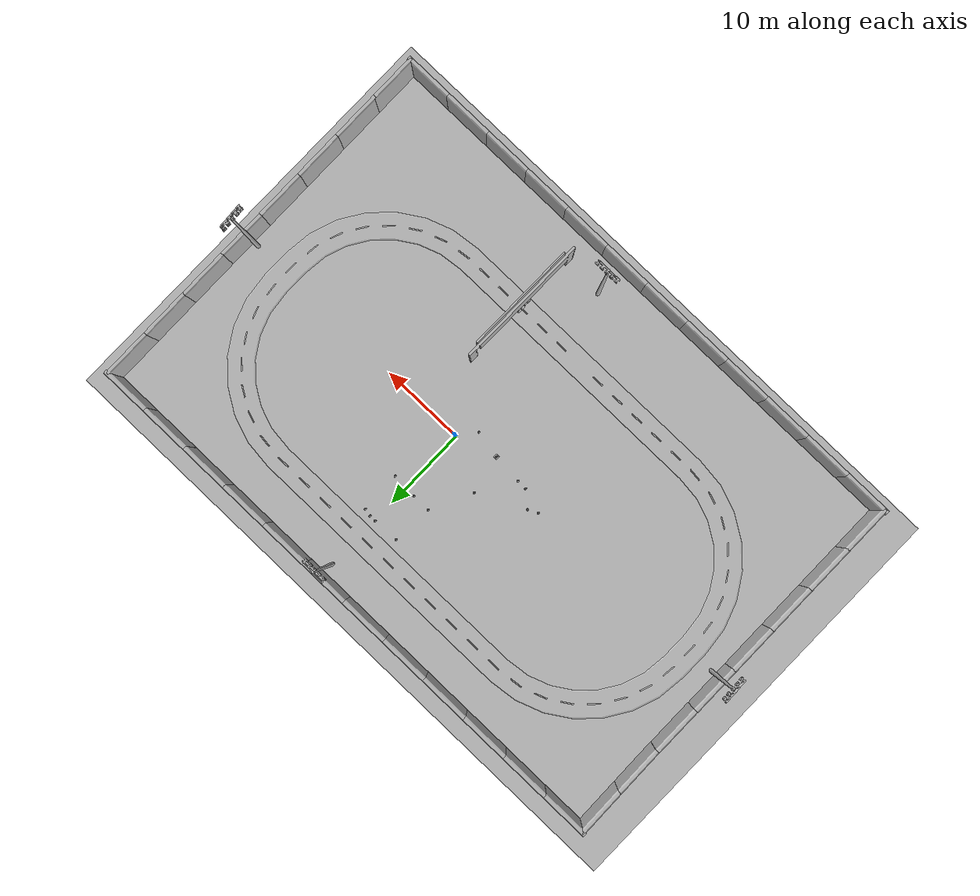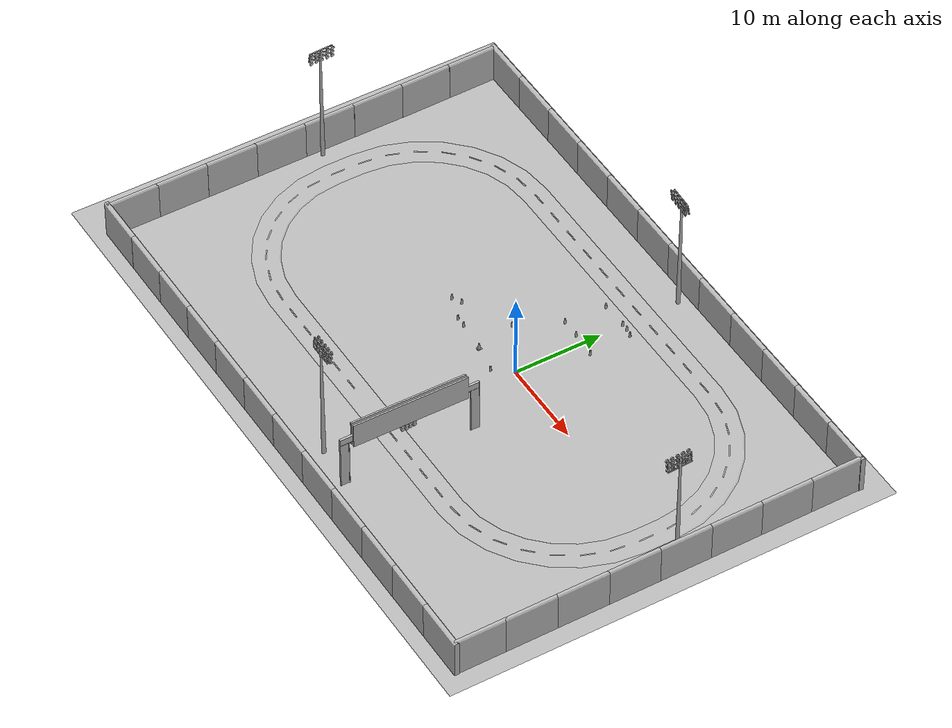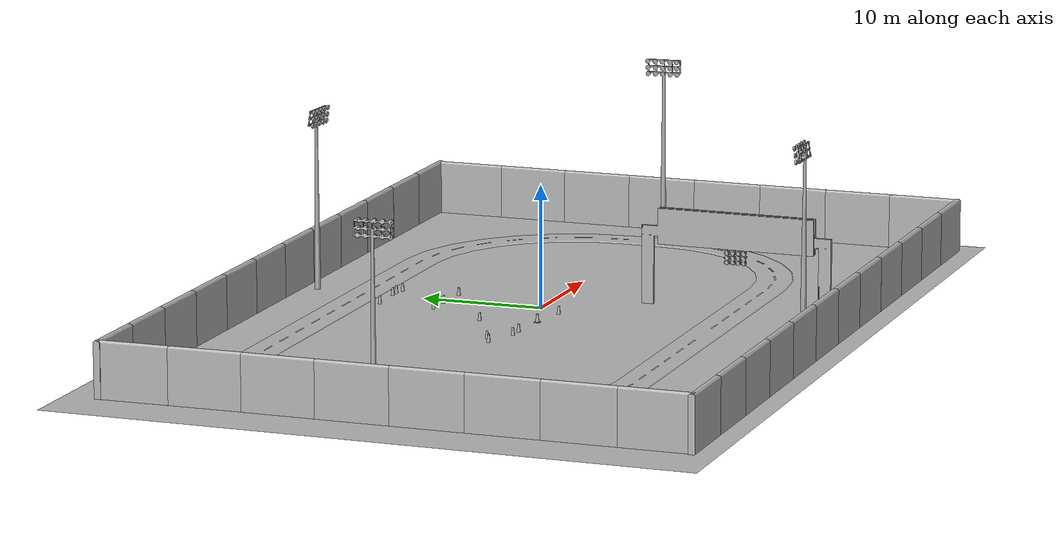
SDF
<sdf version="1.6">
 <world name="default">
  <gravity>0 0 -9.8</gravity>
  <magnetic_field>6e-06 2.3e-05 -4.2e-05</magnetic_field>
  <atmosphere type="adiabatic"/>
  <physics name="default_physics" default="0" type="ode">
   <max_step_size>0.001</max_step_size>
   <real_time_factor>1</real_time_factor>
   <real_time_update_rate>1000</real_time_update_rate>
  </physics>
  <scene><ambient>0.4 0.4 0.4 1</ambient><background>0.7 0.7 0.7 1</background><shadows>1</shadows></scene>
  <spherical_coordinates>
   <surface_model>EARTH_WGS84</surface_model>
   <latitude_deg>0</latitude_deg>
   <longitude_deg>0</longitude_deg>
   <elevation>0</elevation>
   <heading_deg>0</heading_deg>
  </spherical_coordinates>
  <model name="aws_robomaker_racetrack_Billboard_01">
   <include><uri>model://aws_robomaker_racetrack_Billboard_01</uri></include>
   <pose>4.32789 -14.8431 -2e-06 0 1e-06 1.56416</pose>
  </model>
  <model name="aws_robomaker_racetrack_RaceStartLight_01_00">
   <include><uri>model://aws_robomaker_racetrack_RaceStartLight_01</uri></include>
   <pose>4.13359 -14.1692 5.08709 0 -0 0</pose>
  </model>
  <model name="aws_robomaker_racetrack_RaceStartLight_01_01">
   <include><uri>model://aws_robomaker_racetrack_RaceStartLight_01</uri></include>
   <pose>4.14665 -14.6522 5.08709 0 -0 0</pose>
  </model>
  <model name="aws_robomaker_racetrack_RaceStartLight_01_02">
   <include><uri>model://aws_robomaker_racetrack_RaceStartLight_01</uri></include>
   <pose>4.21676 -15.0918 5.08709 0 -0 0</pose>
  </model>
  <model name="aws_robomaker_racetrack_RaceStartLight_01_03">
   <include><uri>model://aws_robomaker_racetrack_RaceStartLight_01</uri></include>
   <pose>4.17594 -15.5526 5.08709 0 -0 0</pose>
  </model>
  <model name="aws_robomaker_racetrack_Track_05_00">
   <include><uri>model://aws_robomaker_racetrack_Track_05</uri></include>
   <pose>0 0 0.051 0 -0 0</pose>
  </model>
  <model name="aws_robomaker_racetrack_Trackline_01_00">
   <include><uri>model://aws_robomaker_racetrack_Trackline_01</uri></include>
   <pose>-4.24539 0 0.102 0 -0 0</pose>
  </model>
  <model name="aws_robomaker_racetrack_TrafficCone_01_00">
   <include><uri>model://aws_robomaker_racetrack_TrafficCone_01</uri></include>
   <pose>-9.379170 -1.123267 0 0 -0 0</pose>
  </model>
  <model name="aws_robomaker_racetrack_TrafficCone_01_01">
   <include><uri>model://aws_robomaker_racetrack_TrafficCone_01</uri></include>
   <pose>-12.1926 -0.169504 0 0 -0 0</pose>
  </model>
  <model name="aws_robomaker_racetrack_TrafficCone_01_02">
   <include><uri>model://aws_robomaker_racetrack_TrafficCone_01</uri></include>
   <pose>-11.1147 0.36652 0 0 -0 0</pose>
  </model>
  <model name="aws_robomaker_racetrack_TrafficCone_01_03">
   <include><uri>model://aws_robomaker_racetrack_TrafficCone_01</uri></include>
   <pose>-8.204195 -1.168056 0 0 -0 0</pose>
  </model>
  <model name="aws_robomaker_racetrack_TrafficCone_01_04">
   <include><uri>model://aws_robomaker_racetrack_TrafficCone_01</uri></include>
   <pose>-5.69629 3.05056 0 0 -0 0</pose>
  </model>
  <model name="aws_robomaker_racetrack_TrafficCone_01_05">
   <include><uri>model://aws_robomaker_racetrack_TrafficCone_01</uri></include>
   <pose>1.63274 12.4879 0 0 -0 0</pose>
  </model>
  <model name="aws_robomaker_racetrack_TrafficCone_01_06">
   <include><uri>model://aws_robomaker_racetrack_TrafficCone_01</uri></include>
   <pose>0.741449 12.6798 0 0 -0 0</pose>
  </model>
  <model name="aws_robomaker_racetrack_TrafficCone_01_07">
   <include><uri>model://aws_robomaker_racetrack_TrafficCone_01</uri></include>
   <pose>-0.041804 12.6793 0 0 -0 0</pose>
  </model>
  <model name="aws_robomaker_racetrack_TrafficCone_01_08">
   <include><uri>model://aws_robomaker_racetrack_TrafficCone_01</uri></include>
   <pose>-1.478687 -2.047922 0 0 0 0</pose>
  </model>
  <model name="aws_robomaker_racetrack_TrafficCone_01_09">
   <include><uri>model://aws_robomaker_racetrack_TrafficCone_01</uri></include>
   <pose>-3.07094 12.5681 0 0 -0 0</pose>
  </model>
  <model name="aws_robomaker_racetrack_TrafficCone_01_10">
   <include><uri>model://aws_robomaker_racetrack_TrafficCone_01</uri></include>
   <pose>-4.721023 -1.439288 0.054 0 -0 0</pose>
  </model>
  <model name="aws_robomaker_racetrack_TrafficCone_01_11">
   <include><uri>model://aws_robomaker_racetrack_TrafficCone_01</uri></include>
   <pose>-1.18613 7.84487 0 0 -0 0</pose>
  </model>
  <model name="aws_robomaker_racetrack_TrafficCone_01_12">
   <include><uri>model://aws_robomaker_racetrack_TrafficCone_01</uri></include>
   <pose>-3.3402 7.8678 0 0 -0 0</pose>
  </model>
  <model name="aws_robomaker_racetrack_TrafficCone_01_13">
   <include><uri>model://aws_robomaker_racetrack_TrafficCone_01</uri></include>
   <pose>1.78217 7.69024 0 0 -0 0</pose>
  </model>
  <model name="aws_robomaker_racetrack_Ground_01_00">
   <include><uri>model://aws_robomaker_racetrack_Ground_01</uri></include>
   <pose>-4.9 -2 0.05 0 -0 0</pose>
  </model>
  <model name="aws_robomaker_racetrack_Light_01_00">
   <include><uri>model://aws_robomaker_racetrack_Light_01</uri></include>
   <pose>-0.355802 -21.7691 0 0 -0 0</pose>
  </model>
  <model name="aws_robomaker_racetrack_Light_01_01">
   <include><uri>model://aws_robomaker_racetrack_Light_01</uri></include>
   <pose>0.041158 19.0887 0 0 -0 3.09146</pose>
  </model>
  <model name="aws_robomaker_racetrack_Light_01_02">
   <include><uri>model://aws_robomaker_racetrack_Light_01</uri></include>
   <pose>29.8469 -0.049215 0 0 -0 1.63215</pose>
  </model>
  <model name="aws_robomaker_racetrack_Light_01_03">
   <include><uri>model://aws_robomaker_racetrack_Light_01</uri></include>
   <pose>-37.2567 -0.808964 0 0 0 -1.52672</pose>
  </model>
  <model name="aws_robomaker_racetrack_Wall_01_00">
   <include><uri>model://aws_robomaker_racetrack_Wall_01</uri></include>
   <pose>10.772 20.6862 0 0 -0 0</pose>
  </model>
  <model name="aws_robomaker_racetrack_Wall_01_01">
   <include><uri>model://aws_robomaker_racetrack_Wall_01</uri></include>
   <pose>4.94795 20.6846 0 0 -0 0</pose>
  </model>
  <model name="aws_robomaker_racetrack_Wall_01_02">
   <include><uri>model://aws_robomaker_racetrack_Wall_01</uri></include>
   <pose>-0.883158 20.684 0 0 -0 0</pose>
  </model>
  <model name="aws_robomaker_racetrack_Wall_01_03">
   <include><uri>model://aws_robomaker_racetrack_Wall_01</uri></include>
   <pose>-6.71068 20.6834 0 0 -0 0</pose>
  </model>
  <model name="aws_robomaker_racetrack_Wall_01_04">
   <include><uri>model://aws_robomaker_racetrack_Wall_01</uri></include>
   <pose>-12.5489 20.683 0 0 -0 0</pose>
  </model>
  <model name="aws_robomaker_racetrack_Wall_01_05">
   <include><uri>model://aws_robomaker_racetrack_Wall_01</uri></include>
   <pose>-18.3809 20.685 0 0 -0 0</pose>
  </model>
  <model name="aws_robomaker_racetrack_Wall_01_06">
   <include><uri>model://aws_robomaker_racetrack_Wall_01</uri></include>
   <pose>-24.2154 20.6835 0 0 -0 0</pose>
  </model>
  <model name="aws_robomaker_racetrack_Wall_01_07">
   <include><uri>model://aws_robomaker_racetrack_Wall_01</uri></include>
   <pose>-30.0218 20.682 0 0 -0 0</pose>
  </model>
  <model name="aws_robomaker_racetrack_Wall_01_08">
   <include><uri>model://aws_robomaker_racetrack_Wall_01</uri></include>
   <pose>-35.8134 20.6795 0 0 -0 0</pose>
  </model>
  <model name="aws_robomaker_racetrack_Wall_01_09">
   <include><uri>model://aws_robomaker_racetrack_Wall_01</uri></include>
   <pose>-35.6316 -25.5235 0 0 -0 3.14066</pose>
  </model>
  <model name="aws_robomaker_racetrack_Wall_01_10">
   <include><uri>model://aws_robomaker_racetrack_Wall_01</uri></include>
   <pose>-29.8183 -25.5224 0 0 -0 0</pose>
  </model>
  <model name="aws_robomaker_racetrack_Wall_01_11">
   <include><uri>model://aws_robomaker_racetrack_Wall_01</uri></include>
   <pose>-23.9919 -25.5182 0 0 -0 0</pose>
  </model>
  <model name="aws_robomaker_racetrack_Wall_01_12">
   <include><uri>model://aws_robomaker_racetrack_Wall_01</uri></include>
   <pose>-18.1656 -25.5178 0 0 -0 0</pose>
  </model>
  <model name="aws_robomaker_racetrack_Wall_01_13">
   <include><uri>model://aws_robomaker_racetrack_Wall_01</uri></include>
   <pose>-12.3608 -25.513 0 0 -0 0</pose>
  </model>
  <model name="aws_robomaker_racetrack_Wall_01_14">
   <include><uri>model://aws_robomaker_racetrack_Wall_01</uri></include>
   <pose>-6.53417 -25.5081 0 0 -0 0</pose>
  </model>
  <model name="aws_robomaker_racetrack_Wall_01_15">
   <include><uri>model://aws_robomaker_racetrack_Wall_01</uri></include>
   <pose>-0.701372 -25.5056 0 0 -0 0</pose>
  </model>
  <model name="aws_robomaker_racetrack_Wall_01_16">
   <include><uri>model://aws_robomaker_racetrack_Wall_01</uri></include>
   <pose>5.12343 -25.507 0 0 -0 0</pose>
  </model>
  <model name="aws_robomaker_racetrack_Wall_01_17">
   <include><uri>model://aws_robomaker_racetrack_Wall_01</uri></include>
   <pose>10.9489 -25.511 0 0 -0 0</pose>
  </model>
  <model name="aws_robomaker_racetrack_Wall_01_18">
   <include><uri>model://aws_robomaker_racetrack_Wall_01</uri></include>
   <pose>16.7552 -25.5119 0 0 -0 0</pose>
  </model>
  <model name="aws_robomaker_racetrack_Wall_01_19">
   <include><uri>model://aws_robomaker_racetrack_Wall_01</uri></include>
   <pose>22.5772 -25.5071 0 0 -0 0</pose>
  </model>
  <model name="aws_robomaker_racetrack_Wall_01_20">
   <include><uri>model://aws_robomaker_racetrack_Wall_01</uri></include>
   <pose>28.3975 -25.5099 0 0 -0 0</pose>
  </model>
  <model name="aws_robomaker_racetrack_Wall_01_21">
   <include><uri>model://aws_robomaker_racetrack_Wall_01</uri></include>
   <pose>16.5737 20.6849 0 0 -0 0</pose>
  </model>
  <model name="aws_robomaker_racetrack_Wall_01_22">
   <include><uri>model://aws_robomaker_racetrack_Wall_01</uri></include>
   <pose>22.3987 20.6806 0 0 -0 0</pose>
  </model>
  <model name="aws_robomaker_racetrack_Wall_01_23">
   <include><uri>model://aws_robomaker_racetrack_Wall_01</uri></include>
   <pose>28.2373 20.6833 0 0 -0 0</pose>
  </model>
  <model name="aws_robomaker_racetrack_Wall_01_24">
   <include><uri>model://aws_robomaker_racetrack_Wall_01</uri></include>
   <pose>-38.3722 17.8758 0 0 -0 1.58903</pose>
  </model>
  <model name="aws_robomaker_racetrack_Wall_01_25">
   <include><uri>model://aws_robomaker_racetrack_Wall_01</uri></include>
   <pose>-38.2759 12.1211 0 0 -0 1.58713</pose>
  </model>
  <model name="aws_robomaker_racetrack_Wall_01_26">
   <include><uri>model://aws_robomaker_racetrack_Wall_01</uri></include>
   <pose>-38.2483 6.29377 0 0 -0 1.57459</pose>
  </model>
  <model name="aws_robomaker_racetrack_Wall_01_27">
   <include><uri>model://aws_robomaker_racetrack_Wall_01</uri></include>
   <pose>-38.2488 0.480728 0 0 -0 1.57459</pose>
  </model>
  <model name="aws_robomaker_racetrack_Wall_01_28">
   <include><uri>model://aws_robomaker_racetrack_Wall_01</uri></include>
   <pose>-38.2283 -5.33883 0 0 -0 1.57459</pose>
  </model>
  <model name="aws_robomaker_racetrack_Wall_01_29">
   <include><uri>model://aws_robomaker_racetrack_Wall_01</uri></include>
   <pose>-38.2023 -11.1666 0 0 -0 1.57459</pose>
  </model>
  <model name="aws_robomaker_racetrack_Wall_01_30">
   <include><uri>model://aws_robomaker_racetrack_Wall_01</uri></include>
   <pose>-38.1849 -16.999 0 0 -0 1.57459</pose>
  </model>
  <model name="aws_robomaker_racetrack_Wall_01_31">
   <include><uri>model://aws_robomaker_racetrack_Wall_01</uri></include>
   <pose>-38.1615 -22.7433 0 0 -0 1.57459</pose>
  </model>
  <model name="aws_robomaker_racetrack_Wall_01_32">
   <include><uri>model://aws_robomaker_racetrack_Wall_01</uri></include>
   <pose>30.9522 -17.1105 0 0 -0 1.57459</pose>
  </model>
  <model name="aws_robomaker_racetrack_Wall_01_33">
   <include><uri>model://aws_robomaker_racetrack_Wall_01</uri></include>
   <pose>30.9711 -22.7005 0 0 -0 1.57459</pose>
  </model>
  <model name="aws_robomaker_racetrack_Wall_01_34">
   <include><uri>model://aws_robomaker_racetrack_Wall_01</uri></include>
   <pose>30.9317 -11.3127 0 0 -0 1.57459</pose>
  </model>
  <model name="aws_robomaker_racetrack_Wall_01_35">
   <include><uri>model://aws_robomaker_racetrack_Wall_01</uri></include>
   <pose>30.9092 -5.49982 0 0 -0 1.57459</pose>
  </model>
  <model name="aws_robomaker_racetrack_Wall_01_36">
   <include><uri>model://aws_robomaker_racetrack_Wall_01</uri></include>
   <pose>30.8878 0.333623 0 0 -0 1.57459</pose>
  </model>
  <model name="aws_robomaker_racetrack_Wall_01_37">
   <include><uri>model://aws_robomaker_racetrack_Wall_01</uri></include>
   <pose>30.8663 6.16983 0 0 -0 1.57459</pose>
  </model>
  <model name="aws_robomaker_racetrack_Wall_01_38">
   <include><uri>model://aws_robomaker_racetrack_Wall_01</uri></include>
   <pose>30.8445 11.977 0 0 -0 1.57459</pose>
  </model>
  <model name="aws_robomaker_racetrack_Wall_01_39">
   <include><uri>model://aws_robomaker_racetrack_Wall_01</uri></include>
   <pose>30.8212 17.8155 0 0 -0 1.57459</pose>
  </model>
  <model name="ground_plane">
   <pose>0 0 -1 0 -0 0</pose>
   <scale>1 1 1</scale>
   <link name="link">
    <pose>0 0 -1 0 -0 0</pose>
    <velocity>0 0 0 0 -0 0</velocity>
    <acceleration>0 0 0 0 -0 0</acceleration>
   </link>
  </model>
  <light name="sun" type="directional">
   <pose>0 0 10 0 0 0</pose>
   <diffuse>1 1 1 1</diffuse>
   <specular>1 1 1 1</specular>
   <attenuation>
    <range>1000</range>
    <constant>0.9</constant>
    <linear>0.01</linear>
    <quadratic>0.001</quadratic>
   </attenuation>
   <direction>-0.5 0.1 -0.9</direction>
  </light>
  <light name="sun2" type="directional">
   <pose>0 0 10 0 0 0</pose>
   <diffuse>1 1 1 1</diffuse>
   <specular>1 1 1 1</specular>
   <attenuation>
    <range>1000</range>
    <constant>0.9</constant>
    <linear>0.01</linear>
    <quadratic>0.001</quadratic>
   </attenuation>
   <direction>-0.5 0.1 -0.9</direction>
  </light>
  <light name="user_point_light_0" type="point">
   <pose>1.49278 -15.5363 1 0 -0 0</pose>
   <diffuse>0 0.98039 0 1</diffuse>
   <specular>0.1 0.1 0.1 1</specular>
   <attenuation>
    <range>0.3</range>
    <constant>0.02</constant>
    <linear>0.01</linear>
    <quadratic>0</quadratic>
   </attenuation>
   <cast_shadows>0</cast_shadows>
   <direction>0 0 -1</direction>
  </light>
  <light name="user_point_light_1" type="point">
   <pose>6.99411 -11.55 1 0 -0 0</pose>
   <diffuse>0 0.98039 0 1</diffuse>
   <specular>0.1 0.1 0.1 1</specular>
   <attenuation>
    <range>0.3</range>
    <constant>0.02</constant>
    <linear>0.01</linear>
    <quadratic>0</quadratic>
   </attenuation>
   <cast_shadows>0</cast_shadows>
   <direction>0 0 -1</direction>
  </light>
  <light name="user_point_light_2" type="point">
   <pose>5.65528 -14.8924 1 0 -0 0</pose>
   <diffuse>0 0.98039 0 1</diffuse>
   <specular>0.1 0.1 0.1 1</specular>
   <attenuation>
    <range>0.3</range>
    <constant>0.02</constant>
    <linear>0.01</linear>
    <quadratic>0</quadratic>
   </attenuation>
   <cast_shadows>0</cast_shadows>
   <direction>0 0 -1</direction>
  </light>
  <light name="user_point_light_3" type="point">
   <pose>3.6452 -17.3437 1 0 -0 0</pose>
   <diffuse>0 0.98039 0 1</diffuse>
   <specular>0.1 0.1 0.1 1</specular>
   <attenuation>
    <range>0.3</range>
    <constant>0.02</constant>
    <linear>0.01</linear>
    <quadratic>0</quadratic>
   </attenuation>
   <cast_shadows>0</cast_shadows>
   <direction>0 0 -1</direction>
  </light>
 </world>
</sdf>

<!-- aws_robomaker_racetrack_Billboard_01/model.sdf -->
<sdf version='1.6'>
  <model name='aws_Billboard_01'>
    <link name='body'>
      <pose frame=''>0 0 0 0 -0 0</pose>
      <self_collide>0</self_collide>
      <kinematic>0</kinematic>
      <gravity>1</gravity>
      <inertial>
        <mass>1000</mass>
        <pose frame=''>0 0 0 0 -0 0</pose>
        <inertia>
          <ixx>1</ixx>
          <ixy>0</ixy>
          <ixz>0</ixz>
          <iyy>1</iyy>
          <iyz>0</iyz>
          <izz>1</izz>
        </inertia>
      </inertial>
      <visual name='visual'>
        <geometry>
          <mesh>
            <uri>file://models/aws_robomaker_racetrack_Billboard_01/meshes/aws_Billboard_01_visual.DAE</uri>
          </mesh>
        </geometry>
        <material>
          <shader type='pixel'>
            <normal_map>__default__</normal_map>
          </shader>
        </material>
        <pose frame=''>0 0 0 0 -0 0</pose>
        <cast_shadows>1</cast_shadows>
        <transparency>0</transparency>
        <meta>
          <layer>2</layer>
        </meta>
      </visual>
      <collision name='collision_0'>
        <laser_retro>0</laser_retro>
        <max_contacts>10</max_contacts>
        <pose frame=''>0 0 0 0 -0 0</pose>
        <geometry>
          <mesh>
            <uri>file://models/aws_robomaker_racetrack_Billboard_01/meshes/aws_Billboard_01_collision.DAE</uri>
            <scale>1 1 1</scale>
          </mesh>
        </geometry>
        <surface>
          <friction>
            <ode>
              <mu>1</mu>
              <mu2>1</mu2>
              <fdir1>0 0 0</fdir1>
              <slip1>0</slip1>
              <slip2>0</slip2>
            </ode>
            <torsional>
              <coefficient>1</coefficient>
              <patch_radius>0</patch_radius>
              <surface_radius>0</surface_radius>
              <use_patch_radius>1</use_patch_radius>
              <ode>
                <slip>0</slip>
              </ode>
            </torsional>
          </friction>
          <bounce>
            <restitution_coefficient>0</restitution_coefficient>
            <threshold>1e+06</threshold>
          </bounce>
          <contact>
            <collide_without_contact>0</collide_without_contact>
            <collide_without_contact_bitmask>1</collide_without_contact_bitmask>
            <collide_bitmask>1</collide_bitmask>
            <ode>
              <soft_cfm>0</soft_cfm>
              <soft_erp>0.2</soft_erp>
              <kp>1e+13</kp>
              <kd>1</kd>
              <max_vel>0.01</max_vel>
              <min_depth>0</min_depth>
            </ode>
            <bullet>
              <split_impulse>1</split_impulse>
              <split_impulse_penetration_threshold>-0.01</split_impulse_penetration_threshold>
              <soft_cfm>0</soft_cfm>
              <soft_erp>0.2</soft_erp>
              <kp>1e+13</kp>
              <kd>1</kd>
            </bullet>
          </contact>
        </surface>
      </collision>
    </link>
    <static>true</static>
  </model>
</sdf>

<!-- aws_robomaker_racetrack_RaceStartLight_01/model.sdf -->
<sdf version='1.6'>
  <model name='aws_RaceStartLight_01'>
    <link name='body'>
      <pose frame=''>0 0 0 0 -0 0</pose>
      <inertial>
        <mass>1</mass>
        <pose frame=''>0 0 0 0 -0 0</pose>
        <inertia>
          <ixx>1</ixx>
          <ixy>0</ixy>
          <ixz>0</ixz>
          <iyy>1</iyy>
          <iyz>0</iyz>
          <izz>1</izz>
        </inertia>
      </inertial>
      <self_collide>0</self_collide>
      <kinematic>0</kinematic>
      <gravity>1</gravity>
      <visual name='visual'>
        <geometry>
          <mesh>
            <uri>file://models/aws_robomaker_racetrack_RaceStartLight_01/meshes/aws_RaceStartLight_01_visual.DAE</uri>
          </mesh>
        </geometry>
        <material>
          <shader type='pixel'>
            <normal_map>__default__</normal_map>
          </shader>
        </material>
        <pose frame=''>0 0 0 0 -0 0</pose>
        <cast_shadows>1</cast_shadows>
        <transparency>0</transparency>
        <meta>
          <layer>2</layer>
        </meta>
      </visual>
      <collision name='collision_1'>
        <laser_retro>0</laser_retro>
        <max_contacts>10</max_contacts>
        <pose frame=''>0 0 0 0 -0 0</pose>
        <geometry>
          <mesh>
            <uri>file://models/aws_robomaker_racetrack_RaceStartLight_01/meshes/aws_RaceStartLight_01_collision.DAE</uri>
            <scale>1 1 1</scale>
          </mesh>
        </geometry>
        <surface>
          <friction>
            <ode>
              <mu>1</mu>
              <mu2>1</mu2>
              <fdir1>0 0 0</fdir1>
              <slip1>0</slip1>
              <slip2>0</slip2>
            </ode>
            <torsional>
              <coefficient>1</coefficient>
              <patch_radius>0</patch_radius>
              <surface_radius>0</surface_radius>
              <use_patch_radius>1</use_patch_radius>
              <ode>
                <slip>0</slip>
              </ode>
            </torsional>
          </friction>
          <bounce>
            <restitution_coefficient>0</restitution_coefficient>
            <threshold>1e+06</threshold>
          </bounce>
          <contact>
            <collide_without_contact>0</collide_without_contact>
            <collide_without_contact_bitmask>1</collide_without_contact_bitmask>
            <collide_bitmask>2</collide_bitmask>
            <ode>
              <soft_cfm>0</soft_cfm>
              <soft_erp>0.2</soft_erp>
              <kp>1e+13</kp>
              <kd>1</kd>
              <max_vel>0.01</max_vel>
              <min_depth>0</min_depth>
            </ode>
            <bullet>
              <split_impulse>1</split_impulse>
              <split_impulse_penetration_threshold>-0.01</split_impulse_penetration_threshold>
              <soft_cfm>0</soft_cfm>
              <soft_erp>0.2</soft_erp>
              <kp>1e+13</kp>
              <kd>1</kd>
            </bullet>
          </contact>
        </surface>
      </collision>
    </link>
    <static>1</static>
    <allow_auto_disable>1</allow_auto_disable>
  </model>
</sdf>

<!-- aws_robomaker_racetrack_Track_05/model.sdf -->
<sdf version='1.6'>
  <model name='aws_Track_05'>
    <link name='body'>
      <pose frame=''>0 0 0 0 -0 0</pose>
      <self_collide>0</self_collide>
      <kinematic>0</kinematic>
      <gravity>1</gravity>
      <inertial>
        <mass>1000</mass>
        <pose frame=''>0 0 0 0 -0 0</pose>
        <inertia>
          <ixx>1</ixx>
          <ixy>0</ixy>
          <ixz>0</ixz>
          <iyy>1</iyy>
          <iyz>0</iyz>
          <izz>1</izz>
        </inertia>
      </inertial>
      <visual name='visual'>
        <geometry>
          <mesh>
            <uri>file://models/aws_robomaker_racetrack_Track_05/meshes/aws_Track_05_visual.DAE</uri>
          </mesh>
        </geometry>
        <material>
          <shader type='pixel'>
            <normal_map>__default__</normal_map>
          </shader>
        </material>
        <pose frame=''>0 0 0 0 -0 0</pose>
        <cast_shadows>1</cast_shadows>
        <transparency>0</transparency>
        <meta>
          <layer>0</layer>
        </meta>
      </visual>
      <collision name='collision_0'>
        <laser_retro>0</laser_retro>
        <max_contacts>10</max_contacts>
        <pose frame=''>0 0 0 0 -0 0</pose>
        <geometry>
          <mesh>
            <uri>file://models/aws_robomaker_racetrack_Track_05/meshes/aws_Track_05_collision.DAE</uri>
            <scale>1 1 1</scale>
          </mesh>
        </geometry>
        <surface>
          <friction>
            <ode>
              <mu>1</mu>
              <mu2>1</mu2>
              <fdir1>0 0 0</fdir1>
              <slip1>0</slip1>
              <slip2>0</slip2>
            </ode>
            <torsional>
              <coefficient>1</coefficient>
              <patch_radius>0</patch_radius>
              <surface_radius>0</surface_radius>
              <use_patch_radius>1</use_patch_radius>
              <ode>
                <slip>0</slip>
              </ode>
            </torsional>
          </friction>
          <bounce>
            <restitution_coefficient>0</restitution_coefficient>
            <threshold>1e+06</threshold>
          </bounce>
          <contact>
            <collide_without_contact>0</collide_without_contact>
            <collide_without_contact_bitmask>1</collide_without_contact_bitmask>
            <collide_bitmask>1</collide_bitmask>
            <ode>
              <soft_cfm>0</soft_cfm>
              <soft_erp>0.2</soft_erp>
              <kp>1e+13</kp>
              <kd>1</kd>
              <max_vel>0.01</max_vel>
              <min_depth>0</min_depth>
            </ode>
            <bullet>
              <split_impulse>1</split_impulse>
              <split_impulse_penetration_threshold>-0.01</split_impulse_penetration_threshold>
              <soft_cfm>0</soft_cfm>
              <soft_erp>0.2</soft_erp>
              <kp>1e+13</kp>
              <kd>1</kd>
            </bullet>
          </contact>
        </surface>
      </collision>
    </link>
    <static>1</static>
  </model>
</sdf>

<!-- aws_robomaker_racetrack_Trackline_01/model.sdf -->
<sdf version='1.6'>
  <model name='aws_Trackline_01'>
    <link name='body'>
      <pose frame=''>0 0 0 0 -0 0</pose>
      <inertial>
        <mass>0.5</mass>
        <pose frame=''>0 0 0 0 -0 0</pose>
        <inertia>
          <ixx>1</ixx>
          <ixy>0</ixy>
          <ixz>0</ixz>
          <iyy>1</iyy>
          <iyz>0</iyz>
          <izz>1</izz>
        </inertia>
      </inertial>
      <self_collide>0</self_collide>
      <kinematic>0</kinematic>
      <gravity>1</gravity>
      <visual name='visual'>
        <geometry>
          <mesh>
            <uri>file://models/aws_robomaker_racetrack_Trackline_01/meshes/aws_Trackline_01_visual.DAE</uri>
          </mesh>
        </geometry>
        <material>
          <shader type='pixel'>
            <normal_map>__default__</normal_map>
          </shader>
        </material>
        <pose frame=''>0 0 0 0 -0 0</pose>
        <cast_shadows>1</cast_shadows>
        <transparency>0</transparency>
        <meta>
          <layer>0</layer>
        </meta>
      </visual>
      <collision name='collision_0'>
        <laser_retro>0</laser_retro>
        <max_contacts>10</max_contacts>
        <pose frame=''>0 0 0 0 -0 0</pose>
        <geometry>
          <mesh>
            <uri>file://models/aws_robomaker_racetrack_Trackline_01/meshes/aws_Trackline_01_collision.DAE</uri>
            <scale>1 1 1</scale>
          </mesh>
        </geometry>
        <surface>
          <friction>
            <ode>
              <mu>1</mu>
              <mu2>1</mu2>
              <fdir1>0 0 0</fdir1>
              <slip1>0</slip1>
              <slip2>0</slip2>
            </ode>
            <torsional>
              <coefficient>1</coefficient>
              <patch_radius>0</patch_radius>
              <surface_radius>0</surface_radius>
              <use_patch_radius>1</use_patch_radius>
              <ode>
                <slip>0</slip>
              </ode>
            </torsional>
          </friction>
          <bounce>
            <restitution_coefficient>0</restitution_coefficient>
            <threshold>1e+06</threshold>
          </bounce>
          <contact>
            <collide_without_contact>0</collide_without_contact>
            <collide_without_contact_bitmask>1</collide_without_contact_bitmask>
            <collide_bitmask>0</collide_bitmask>
            <ode>
              <soft_cfm>0</soft_cfm>
              <soft_erp>0.2</soft_erp>
              <kp>1e+13</kp>
              <kd>1</kd>
              <max_vel>0.01</max_vel>
              <min_depth>0</min_depth>
            </ode>
            <bullet>
              <split_impulse>1</split_impulse>
              <split_impulse_penetration_threshold>-0.01</split_impulse_penetration_threshold>
              <soft_cfm>0</soft_cfm>
              <soft_erp>0.2</soft_erp>
              <kp>1e+13</kp>
              <kd>1</kd>
            </bullet>
          </contact>
        </surface>
      </collision>
    </link>
    <static>1</static>
  </model>
</sdf>

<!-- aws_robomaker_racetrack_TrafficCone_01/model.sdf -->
<sdf version='1.6'>
  <model name='aws_TrafficCone_01'>
    <link name='body'>
      <pose frame=''>0 0 0 0 -0 0</pose>
      <self_collide>0</self_collide>
      <kinematic>0</kinematic>
      <gravity>1</gravity>
      <inertial>
        <mass>0.5</mass>
        <pose frame=''>0 0 0 0 -0 0</pose>
        <inertia>
          <ixx>1</ixx>
          <ixy>0</ixy>
          <ixz>0</ixz>
          <iyy>1</iyy>
          <iyz>0</iyz>
          <izz>1</izz>
        </inertia>
      </inertial>
      <visual name='visual'>
        <geometry>
          <mesh>
            <uri>file://models/aws_robomaker_racetrack_TrafficCone_01/meshes/aws_TrafficCone_01_visual.DAE</uri>
          </mesh>
        </geometry>
        <material>
          <shader type='pixel'>
            <normal_map>__default__</normal_map>
          </shader>
        </material>
        <pose frame=''>0 0 0 0 -0 0</pose>
        <cast_shadows>1</cast_shadows>
        <transparency>0</transparency>
        <meta>
          <layer>0</layer>
        </meta>
      </visual>
      <collision name='collision_0'>
        <laser_retro>0</laser_retro>
        <max_contacts>10</max_contacts>
        <pose frame=''>0 0 0 0 -0 0</pose>
        <geometry>
          <mesh>
            <uri>file://models/aws_robomaker_racetrack_TrafficCone_01/meshes/aws_TrafficCone_01_coliision.DAE</uri>
            <scale>1 1 1</scale>
          </mesh>
        </geometry>
        <surface>
          <friction>
            <ode>
              <mu>1</mu>
              <mu2>1</mu2>
              <fdir1>0 0 0</fdir1>
              <slip1>0</slip1>
              <slip2>0</slip2>
            </ode>
            <torsional>
              <coefficient>1</coefficient>
              <patch_radius>0</patch_radius>
              <surface_radius>0</surface_radius>
              <use_patch_radius>1</use_patch_radius>
              <ode>
                <slip>0</slip>
              </ode>
            </torsional>
          </friction>
          <bounce>
            <restitution_coefficient>0</restitution_coefficient>
            <threshold>1e+06</threshold>
          </bounce>
          <contact>
            <collide_without_contact>0</collide_without_contact>
            <collide_without_contact_bitmask>1</collide_without_contact_bitmask>
            <collide_bitmask>1</collide_bitmask>
            <ode>
              <soft_cfm>0</soft_cfm>
              <soft_erp>0.2</soft_erp>
              <kp>1e+13</kp>
              <kd>1</kd>
              <max_vel>0.01</max_vel>
              <min_depth>0</min_depth>
            </ode>
            <bullet>
              <split_impulse>1</split_impulse>
              <split_impulse_penetration_threshold>-0.01</split_impulse_penetration_threshold>
              <soft_cfm>0</soft_cfm>
              <soft_erp>0.2</soft_erp>
              <kp>1e+13</kp>
              <kd>1</kd>
            </bullet>
          </contact>
        </surface>
      </collision>
    </link>
    <static>true</static>
  </model>
</sdf>

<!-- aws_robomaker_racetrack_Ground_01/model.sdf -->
<sdf version='1.6'>
  <model name='aws_Ground_01'>
    <link name='body'>
      <pose frame=''>0 0 0 0 -0 0</pose>
      <self_collide>0</self_collide>
      <kinematic>0</kinematic>
      <gravity>1</gravity>
      <inertial>
        <mass>10000</mass>
        <pose frame=''>0 0 0 0 -0 0</pose>
        <inertia>
          <ixx>0</ixx>
          <ixy>0</ixy>
          <ixz>0</ixz>
          <iyy>0</iyy>
          <iyz>0</iyz>
          <izz>0</izz>
        </inertia>
      </inertial>
      <visual name='visual'>
        <geometry>
          <mesh>
            <uri>file://models/aws_robomaker_racetrack_Ground_01/meshes/aws_Ground_01_visual.DAE</uri>
            <scale>0.090 0.06 0.2</scale>
          </mesh>
        </geometry>
        <material>
          <shader type='pixel'>
            <normal_map>__default__</normal_map>
          </shader>
        </material>
        <pose frame=''>0 0 0 0 -0 0</pose>
        <cast_shadows>1</cast_shadows>
        <transparency>0</transparency>
        <meta>
          <layer>0</layer>
        </meta>
      </visual>
      <collision name='collision_0'>
        <laser_retro>0</laser_retro>
        <max_contacts>10</max_contacts>
        <pose frame=''>0 0 0 0 0 0</pose>
        <geometry>
          <mesh>
            <uri>file://models/aws_robomaker_racetrack_Ground_01/meshes/aws_Ground_01_collision.DAE</uri>
            <scale>0.2 0.2 0.2</scale>
          </mesh>
        </geometry>
        <surface>
          <friction>
            <ode>
              <mu>1</mu>
              <mu2>1</mu2>
              <fdir1>0 0 0</fdir1>
              <slip1>0</slip1>
              <slip2>0</slip2>
            </ode>
            <torsional>
              <coefficient>1</coefficient>
              <patch_radius>0</patch_radius>
              <surface_radius>0</surface_radius>
              <use_patch_radius>1</use_patch_radius>
              <ode>
                <slip>0</slip>
              </ode>
            </torsional>
          </friction>
          <bounce>
            <restitution_coefficient>0</restitution_coefficient>
            <threshold>1e+06</threshold>
          </bounce>
          <contact>
            <collide_without_contact>0</collide_without_contact>
            <collide_without_contact_bitmask>1</collide_without_contact_bitmask>
            <collide_bitmask>0xffff</collide_bitmask>
            <ode>
              <soft_cfm>0</soft_cfm>
              <soft_erp>0.2</soft_erp>
              <kp>1e+13</kp>
              <kd>1</kd>
              <max_vel>0.01</max_vel>
              <min_depth>0</min_depth>
            </ode>
            <bullet>
              <split_impulse>1</split_impulse>
              <split_impulse_penetration_threshold>-0.01</split_impulse_penetration_threshold>
              <soft_cfm>0</soft_cfm>
              <soft_erp>0.2</soft_erp>
              <kp>1e+13</kp>
              <kd>1</kd>
            </bullet>
          </contact>
        </surface>
      </collision>
    </link>
    <static>1</static>
  </model>
</sdf>

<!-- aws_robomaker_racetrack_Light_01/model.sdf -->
<sdf version='1.6'>
  <model name='aws_Light_01'>
    <link name='body'>
      <pose frame=''>0 0 0 0 -0 0</pose>
      <self_collide>0</self_collide>
      <kinematic>0</kinematic>
      <gravity>1</gravity>
      <inertial>
        <mass>100</mass>
        <pose frame=''>0 0 0 0 -0 0</pose>
        <inertia>
          <ixx>1</ixx>
          <ixy>0</ixy>
          <ixz>0</ixz>
          <iyy>1</iyy>
          <iyz>0</iyz>
          <izz>1</izz>
        </inertia>
      </inertial>
      <visual name='visual'>
        <geometry>
          <mesh>
            <uri>file://models/aws_robomaker_racetrack_Light_01/meshes/aws_Light_01_visual.DAE</uri>
          </mesh>
        </geometry>
        <material>
          <shader type='pixel'>
            <normal_map>__default__</normal_map>
          </shader>
        </material>
        <pose frame=''>0 0 0 0 -0 0</pose>
        <cast_shadows>1</cast_shadows>
        <transparency>0</transparency>
        <meta>
          <layer>0</layer>
        </meta>
      </visual>
      <collision name='collision_0'>
        <laser_retro>0</laser_retro>
        <max_contacts>10</max_contacts>
        <pose frame=''>0 0 0 0 -0 0</pose>
        <geometry>
          <mesh>
            <uri>file://models/aws_robomaker_racetrack_Light_01/meshes/aws_Light_01_collision.DAE</uri>
            <scale>1 1 1</scale>
          </mesh>
        </geometry>
        <surface>
          <friction>
            <ode>
              <mu>1</mu>
              <mu2>1</mu2>
              <fdir1>0 0 0</fdir1>
              <slip1>0</slip1>
              <slip2>0</slip2>
            </ode>
            <torsional>
              <coefficient>1</coefficient>
              <patch_radius>0</patch_radius>
              <surface_radius>0</surface_radius>
              <use_patch_radius>1</use_patch_radius>
              <ode>
                <slip>0</slip>
              </ode>
            </torsional>
          </friction>
          <bounce>
            <restitution_coefficient>0</restitution_coefficient>
            <threshold>1e+06</threshold>
          </bounce>
          <contact>
            <collide_without_contact>0</collide_without_contact>
            <collide_without_contact_bitmask>1</collide_without_contact_bitmask>
            <collide_bitmask>1</collide_bitmask>
            <ode>
              <soft_cfm>0</soft_cfm>
              <soft_erp>0.2</soft_erp>
              <kp>1e+13</kp>
              <kd>1</kd>
              <max_vel>0.01</max_vel>
              <min_depth>0</min_depth>
            </ode>
            <bullet>
              <split_impulse>1</split_impulse>
              <split_impulse_penetration_threshold>-0.01</split_impulse_penetration_threshold>
              <soft_cfm>0</soft_cfm>
              <soft_erp>0.2</soft_erp>
              <kp>1e+13</kp>
              <kd>1</kd>
            </bullet>
          </contact>
        </surface>
      </collision>
    </link>
    <static>1</static>
  </model>
</sdf>

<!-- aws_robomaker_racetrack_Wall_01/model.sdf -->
<sdf version='1.6'>
  <model name='aws_Wall_01'>
<link name='body'>
        <pose frame=''>0 0 0 0 -0 0</pose>
        <inertial>
          <mass>500</mass>
          <pose frame=''>0 0 0 0 -0 0</pose>
          <inertia>
            <ixx>1</ixx>
            <ixy>0</ixy>
            <ixz>0</ixz>
            <iyy>1</iyy>
            <iyz>0</iyz>
            <izz>1</izz>
          </inertia>
        </inertial>
        <self_collide>0</self_collide>
        <kinematic>0</kinematic>
        <gravity>1</gravity>
        <visual name='visual'>
          <geometry>
            <mesh>
              <uri>file://models/aws_robomaker_racetrack_Wall_01/meshes/aws_Wall_01_visual.DAE</uri>
              <scale>2.59853 2.59853 2.59853</scale>
            </mesh>
          </geometry>
          <material>
            <shader type='pixel'>
              <normal_map>__default__</normal_map>
            </shader>
          </material>
          <pose frame=''>0 0 0 0 -0 0</pose>
          <cast_shadows>1</cast_shadows>
          <transparency>0</transparency>
        <meta>
          <layer>1</layer>
        </meta>
        </visual>
        <collision name='collision_0'>
          <laser_retro>0</laser_retro>
          <max_contacts>10</max_contacts>
          <pose frame=''>0 0 0 0 -0 0</pose>
          <geometry>
            <mesh>
              <uri>file://models/aws_robomaker_racetrack_Wall_01/meshes/aws_Wall_01_collision.DAE</uri>
              <scale>2.59853 2.59853 2.59853</scale>
            </mesh>
          </geometry>
          <surface>
            <friction>
              <ode>
                <mu>1</mu>
                <mu2>1</mu2>
                <fdir1>0 0 0</fdir1>
                <slip1>0</slip1>
                <slip2>0</slip2>
              </ode>
              <torsional>
                <coefficient>1</coefficient>
                <patch_radius>0</patch_radius>
                <surface_radius>0</surface_radius>
                <use_patch_radius>1</use_patch_radius>
                <ode>
                  <slip>0</slip>
                </ode>
              </torsional>
            </friction>
            <bounce>
              <restitution_coefficient>0</restitution_coefficient>
              <threshold>1e+06</threshold>
            </bounce>
            <contact>
              <collide_without_contact>0</collide_without_contact>
              <collide_without_contact_bitmask>1</collide_without_contact_bitmask>
              <collide_bitmask>1</collide_bitmask>
              <ode>
                <soft_cfm>0</soft_cfm>
                <soft_erp>0.2</soft_erp>
                <kp>1e+13</kp>
                <kd>1</kd>
                <max_vel>0.01</max_vel>
                <min_depth>0</min_depth>
              </ode>
              <bullet>
                <split_impulse>1</split_impulse>
                <split_impulse_penetration_threshold>-0.01</split_impulse_penetration_threshold>
                <soft_cfm>0</soft_cfm>
                <soft_erp>0.2</soft_erp>
                <kp>1e+13</kp>
                <kd>1</kd>
              </bullet>
            </contact>
          </surface>
        </collision>
      </link>
    <static>1</static>
  </model>
</sdf>
